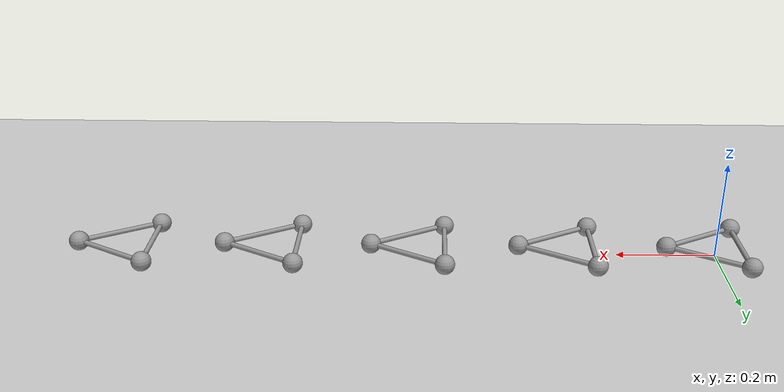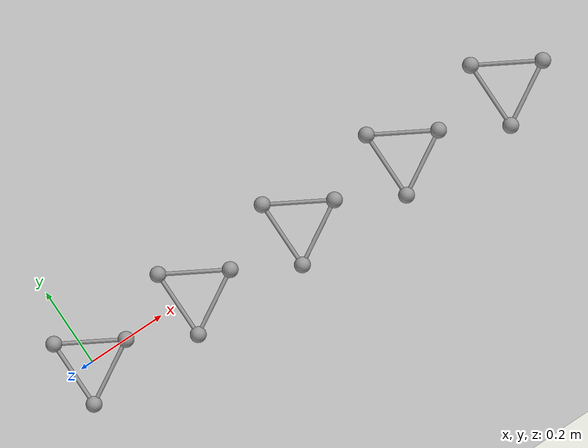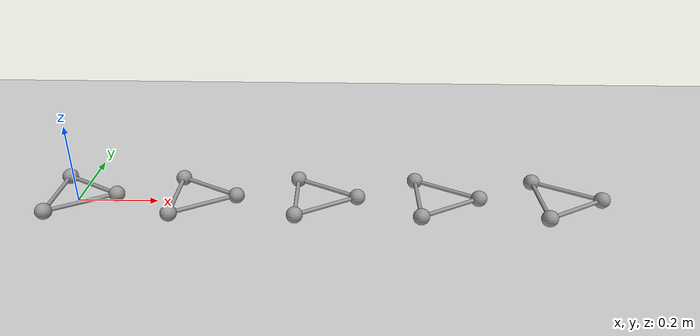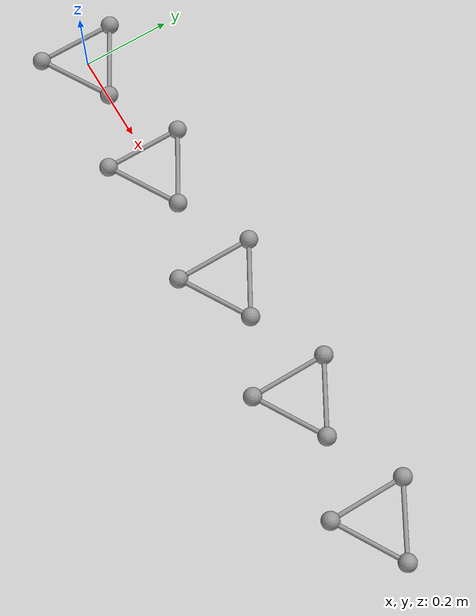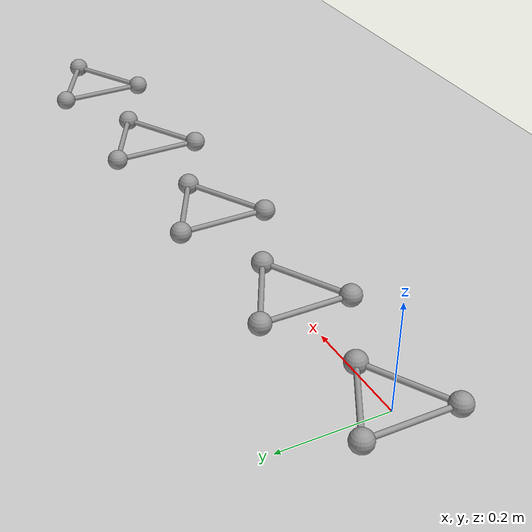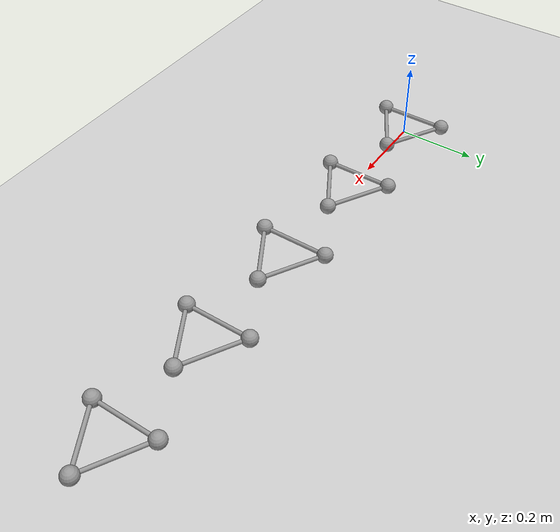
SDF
<sdf version="1.6">
 <world name="default">
  <include><uri>model://ground_plane</uri></include>
  <include><uri>model://sun</uri></include>
  <model name="triball_0">
   <link name="link">
    <pose>0 0 0.02 0 0 0</pose>
    <inertial>
     <mass>0.060318578948924034</mass>
     <inertia>
      <ixx>0.000311243867376448</ixx>
      <iyy>0.000311243867376448</iyy>
      <izz>0.0006128367621210681</izz>
      <ixy>0.0</ixy>
      <ixz>0.0</ixz>
      <iyz>0.0</iyz>
     </inertia>
    </inertial>
    <sensor name="imu" type="imu"><always_on>true</always_on></sensor>
    <collision name="collision_a">
     <pose>0.09999999999999999 0 0  0 0 0</pose>
     <geometry><sphere><radius>0.02</radius></sphere></geometry>
     <surface><friction><ode><mu>0.9</mu><mu2>0.9</mu2><fdir1>1 0 0</fdir1></ode></friction></surface>
    </collision>
    <visual name="visual_a">
     <pose>0.09999999999999999 0 0  0 0 0</pose>
     <geometry><sphere><radius>0.02</radius></sphere></geometry>
     <material>
      <script><uri>file://media/materials/scripts/gazebo.material</uri><name>Gazebo/Grey</name></script>
     </material>
    </visual>
    <collision name="collision_a_to_b">
     <pose>0.024999999999999998 0.04330127018922193 0.0  -1.5707962969925737 -1.0471975511965974 1.047197525387029</pose>
     <geometry><cylinder><radius>0.005</radius><length>0.17320508075688773</length></cylinder></geometry>
     <surface><friction><ode><mu>0.9</mu><mu2>0.9</mu2></ode></friction></surface>
    </collision>
    <visual name="visual_a_to_b">
     <pose>0.024999999999999998 0.04330127018922193 0.0  -1.5707962969925737 -1.0471975511965974 1.047197525387029</pose>
     <geometry><cylinder><radius>0.005</radius><length>0.17320508075688773</length></cylinder></geometry>
     <material>
      <script><uri>file://media/materials/scripts/gazebo.material</uri><name>Gazebo/Grey</name></script>
     </material>
    </visual>
    <collision name="collision_a_to_c">
     <pose>0.024999999999999998 -0.04330127018922193 0.0  1.5707962969925737 -1.0471975511965974 -1.047197525387029</pose>
     <geometry><cylinder><radius>0.005</radius><length>0.17320508075688773</length></cylinder></geometry>
     <surface><friction><ode><mu>0.9</mu><mu2>0.9</mu2></ode></friction></surface>
    </collision>
    <visual name="visual_a_to_c">
     <pose>0.024999999999999998 -0.04330127018922193 0.0  1.5707962969925737 -1.0471975511965974 -1.047197525387029</pose>
     <geometry><cylinder><radius>0.005</radius><length>0.17320508075688773</length></cylinder></geometry>
     <material>
      <script><uri>file://media/materials/scripts/gazebo.material</uri><name>Gazebo/Grey</name></script>
     </material>
    </visual>
    <collision name="collision_b">
     <pose>-0.049999999999999996 0.08660254037844387 0  0 0 0</pose>
     <geometry><sphere><radius>0.02</radius></sphere></geometry>
     <surface><friction><ode><mu>0.9</mu><mu2>0.9</mu2><fdir1>1 0 0</fdir1></ode></friction></surface>
    </collision>
    <visual name="visual_b">
     <pose>-0.049999999999999996 0.08660254037844387 0  0 0 0</pose>
     <geometry><sphere><radius>0.02</radius></sphere></geometry>
     <material>
      <script><uri>file://media/materials/scripts/gazebo.material</uri><name>Gazebo/Grey</name></script>
     </material>
    </visual>
    <collision name="collision_b_to_c">
     <pose>-0.049999999999999996 0.0 0.0  1.5707963267948963 -0.0 0.0</pose>
     <geometry><cylinder><radius>0.005</radius><length>0.17320508075688773</length></cylinder></geometry>
     <surface><friction><ode><mu>0.9</mu><mu2>0.9</mu2></ode></friction></surface>
    </collision>
    <visual name="visual_b_to_c">
     <pose>-0.049999999999999996 0.0 0.0  1.5707963267948963 -0.0 0.0</pose>
     <geometry><cylinder><radius>0.005</radius><length>0.17320508075688773</length></cylinder></geometry>
     <material>
      <script><uri>file://media/materials/scripts/gazebo.material</uri><name>Gazebo/Grey</name></script>
     </material>
    </visual>
    <collision name="collision_c">
     <pose>-0.049999999999999996 -0.08660254037844387 0  0 0 0</pose>
     <geometry><sphere><radius>0.02</radius></sphere></geometry>
     <surface><friction><ode><mu>0.9</mu><mu2>0.9</mu2><fdir1>1 0 0</fdir1></ode></friction></surface>
    </collision>
    <visual name="visual_c">
     <pose>-0.049999999999999996 -0.08660254037844387 0  0 0 0</pose>
     <geometry><sphere><radius>0.02</radius></sphere></geometry>
     <material>
      <script><uri>file://media/materials/scripts/gazebo.material</uri><name>Gazebo/Grey</name></script>
     </material>
    </visual>
   </link>
   <plugin name="triball_0" filename="libInitialVelocityPlugin.so">
    <linear>0 15 0</linear>
    <angular>0 0 -150.0</angular>
   </plugin>
  </model>
  <model name="triball_1">
   <pose>0.3 0 0 0 0 0</pose>
   <link name="link">
    <pose>0 0 0.02 0 0 0</pose>
    <inertial>
     <mass>0.060318578948924034</mass>
     <inertia>
      <ixx>0.000311243867376448</ixx>
      <iyy>0.000311243867376448</iyy>
      <izz>0.0006128367621210681</izz>
      <ixy>0.0</ixy>
      <ixz>0.0</ixz>
      <iyz>0.0</iyz>
     </inertia>
    </inertial>
    <sensor name="imu" type="imu"><always_on>true</always_on></sensor>
    <collision name="collision_a">
     <pose>0.09999999999999999 0 0  0 0 0</pose>
     <geometry><sphere><radius>0.02</radius></sphere></geometry>
     <surface><friction><ode><mu>0.9</mu><mu2>0.9</mu2><fdir1>1 0 0</fdir1></ode></friction></surface>
    </collision>
    <visual name="visual_a">
     <pose>0.09999999999999999 0 0  0 0 0</pose>
     <geometry><sphere><radius>0.02</radius></sphere></geometry>
     <material>
      <script><uri>file://media/materials/scripts/gazebo.material</uri><name>Gazebo/Grey</name></script>
     </material>
    </visual>
    <collision name="collision_a_to_b">
     <pose>0.024999999999999998 0.04330127018922193 0.0  -1.5707962969925737 -1.0471975511965974 1.047197525387029</pose>
     <geometry><cylinder><radius>0.005</radius><length>0.17320508075688773</length></cylinder></geometry>
     <surface><friction><ode><mu>0.9</mu><mu2>0.9</mu2></ode></friction></surface>
    </collision>
    <visual name="visual_a_to_b">
     <pose>0.024999999999999998 0.04330127018922193 0.0  -1.5707962969925737 -1.0471975511965974 1.047197525387029</pose>
     <geometry><cylinder><radius>0.005</radius><length>0.17320508075688773</length></cylinder></geometry>
     <material>
      <script><uri>file://media/materials/scripts/gazebo.material</uri><name>Gazebo/Grey</name></script>
     </material>
    </visual>
    <collision name="collision_a_to_c">
     <pose>0.024999999999999998 -0.04330127018922193 0.0  1.5707962969925737 -1.0471975511965974 -1.047197525387029</pose>
     <geometry><cylinder><radius>0.005</radius><length>0.17320508075688773</length></cylinder></geometry>
     <surface><friction><ode><mu>0.9</mu><mu2>0.9</mu2></ode></friction></surface>
    </collision>
    <visual name="visual_a_to_c">
     <pose>0.024999999999999998 -0.04330127018922193 0.0  1.5707962969925737 -1.0471975511965974 -1.047197525387029</pose>
     <geometry><cylinder><radius>0.005</radius><length>0.17320508075688773</length></cylinder></geometry>
     <material>
      <script><uri>file://media/materials/scripts/gazebo.material</uri><name>Gazebo/Grey</name></script>
     </material>
    </visual>
    <collision name="collision_b">
     <pose>-0.049999999999999996 0.08660254037844387 0  0 0 0</pose>
     <geometry><sphere><radius>0.02</radius></sphere></geometry>
     <surface><friction><ode><mu>0.9</mu><mu2>0.9</mu2><fdir1>1 0 0</fdir1></ode></friction></surface>
    </collision>
    <visual name="visual_b">
     <pose>-0.049999999999999996 0.08660254037844387 0  0 0 0</pose>
     <geometry><sphere><radius>0.02</radius></sphere></geometry>
     <material>
      <script><uri>file://media/materials/scripts/gazebo.material</uri><name>Gazebo/Grey</name></script>
     </material>
    </visual>
    <collision name="collision_b_to_c">
     <pose>-0.049999999999999996 0.0 0.0  1.5707963267948963 -0.0 0.0</pose>
     <geometry><cylinder><radius>0.005</radius><length>0.17320508075688773</length></cylinder></geometry>
     <surface><friction><ode><mu>0.9</mu><mu2>0.9</mu2></ode></friction></surface>
    </collision>
    <visual name="visual_b_to_c">
     <pose>-0.049999999999999996 0.0 0.0  1.5707963267948963 -0.0 0.0</pose>
     <geometry><cylinder><radius>0.005</radius><length>0.17320508075688773</length></cylinder></geometry>
     <material>
      <script><uri>file://media/materials/scripts/gazebo.material</uri><name>Gazebo/Grey</name></script>
     </material>
    </visual>
    <collision name="collision_c">
     <pose>-0.049999999999999996 -0.08660254037844387 0  0 0 0</pose>
     <geometry><sphere><radius>0.02</radius></sphere></geometry>
     <surface><friction><ode><mu>0.9</mu><mu2>0.9</mu2><fdir1>1 0 0</fdir1></ode></friction></surface>
    </collision>
    <visual name="visual_c">
     <pose>-0.049999999999999996 -0.08660254037844387 0  0 0 0</pose>
     <geometry><sphere><radius>0.02</radius></sphere></geometry>
     <material>
      <script><uri>file://media/materials/scripts/gazebo.material</uri><name>Gazebo/Grey</name></script>
     </material>
    </visual>
   </link>
   <plugin name="triball_1" filename="libInitialVelocityPlugin.so">
    <linear>0 15 0</linear>
    <angular>0 0 -140.625</angular>
   </plugin>
  </model>
  <model name="triball_2">
   <pose>0.6 0 0 0 0 0</pose>
   <link name="link">
    <pose>0 0 0.02 0 0 0</pose>
    <inertial>
     <mass>0.060318578948924034</mass>
     <inertia>
      <ixx>0.000311243867376448</ixx>
      <iyy>0.000311243867376448</iyy>
      <izz>0.0006128367621210681</izz>
      <ixy>0.0</ixy>
      <ixz>0.0</ixz>
      <iyz>0.0</iyz>
     </inertia>
    </inertial>
    <sensor name="imu" type="imu"><always_on>true</always_on></sensor>
    <collision name="collision_a">
     <pose>0.09999999999999999 0 0  0 0 0</pose>
     <geometry><sphere><radius>0.02</radius></sphere></geometry>
     <surface><friction><ode><mu>0.9</mu><mu2>0.9</mu2><fdir1>1 0 0</fdir1></ode></friction></surface>
    </collision>
    <visual name="visual_a">
     <pose>0.09999999999999999 0 0  0 0 0</pose>
     <geometry><sphere><radius>0.02</radius></sphere></geometry>
     <material>
      <script><uri>file://media/materials/scripts/gazebo.material</uri><name>Gazebo/Grey</name></script>
     </material>
    </visual>
    <collision name="collision_a_to_b">
     <pose>0.024999999999999998 0.04330127018922193 0.0  -1.5707962969925737 -1.0471975511965974 1.047197525387029</pose>
     <geometry><cylinder><radius>0.005</radius><length>0.17320508075688773</length></cylinder></geometry>
     <surface><friction><ode><mu>0.9</mu><mu2>0.9</mu2></ode></friction></surface>
    </collision>
    <visual name="visual_a_to_b">
     <pose>0.024999999999999998 0.04330127018922193 0.0  -1.5707962969925737 -1.0471975511965974 1.047197525387029</pose>
     <geometry><cylinder><radius>0.005</radius><length>0.17320508075688773</length></cylinder></geometry>
     <material>
      <script><uri>file://media/materials/scripts/gazebo.material</uri><name>Gazebo/Grey</name></script>
     </material>
    </visual>
    <collision name="collision_a_to_c">
     <pose>0.024999999999999998 -0.04330127018922193 0.0  1.5707962969925737 -1.0471975511965974 -1.047197525387029</pose>
     <geometry><cylinder><radius>0.005</radius><length>0.17320508075688773</length></cylinder></geometry>
     <surface><friction><ode><mu>0.9</mu><mu2>0.9</mu2></ode></friction></surface>
    </collision>
    <visual name="visual_a_to_c">
     <pose>0.024999999999999998 -0.04330127018922193 0.0  1.5707962969925737 -1.0471975511965974 -1.047197525387029</pose>
     <geometry><cylinder><radius>0.005</radius><length>0.17320508075688773</length></cylinder></geometry>
     <material>
      <script><uri>file://media/materials/scripts/gazebo.material</uri><name>Gazebo/Grey</name></script>
     </material>
    </visual>
    <collision name="collision_b">
     <pose>-0.049999999999999996 0.08660254037844387 0  0 0 0</pose>
     <geometry><sphere><radius>0.02</radius></sphere></geometry>
     <surface><friction><ode><mu>0.9</mu><mu2>0.9</mu2><fdir1>1 0 0</fdir1></ode></friction></surface>
    </collision>
    <visual name="visual_b">
     <pose>-0.049999999999999996 0.08660254037844387 0  0 0 0</pose>
     <geometry><sphere><radius>0.02</radius></sphere></geometry>
     <material>
      <script><uri>file://media/materials/scripts/gazebo.material</uri><name>Gazebo/Grey</name></script>
     </material>
    </visual>
    <collision name="collision_b_to_c">
     <pose>-0.049999999999999996 0.0 0.0  1.5707963267948963 -0.0 0.0</pose>
     <geometry><cylinder><radius>0.005</radius><length>0.17320508075688773</length></cylinder></geometry>
     <surface><friction><ode><mu>0.9</mu><mu2>0.9</mu2></ode></friction></surface>
    </collision>
    <visual name="visual_b_to_c">
     <pose>-0.049999999999999996 0.0 0.0  1.5707963267948963 -0.0 0.0</pose>
     <geometry><cylinder><radius>0.005</radius><length>0.17320508075688773</length></cylinder></geometry>
     <material>
      <script><uri>file://media/materials/scripts/gazebo.material</uri><name>Gazebo/Grey</name></script>
     </material>
    </visual>
    <collision name="collision_c">
     <pose>-0.049999999999999996 -0.08660254037844387 0  0 0 0</pose>
     <geometry><sphere><radius>0.02</radius></sphere></geometry>
     <surface><friction><ode><mu>0.9</mu><mu2>0.9</mu2><fdir1>1 0 0</fdir1></ode></friction></surface>
    </collision>
    <visual name="visual_c">
     <pose>-0.049999999999999996 -0.08660254037844387 0  0 0 0</pose>
     <geometry><sphere><radius>0.02</radius></sphere></geometry>
     <material>
      <script><uri>file://media/materials/scripts/gazebo.material</uri><name>Gazebo/Grey</name></script>
     </material>
    </visual>
   </link>
   <plugin name="triball_2" filename="libInitialVelocityPlugin.so">
    <linear>0 15 0</linear>
    <angular>0 0 -131.25</angular>
   </plugin>
  </model>
  <model name="triball_3">
   <pose>0.8999999999999999 0 0 0 0 0</pose>
   <link name="link">
    <pose>0 0 0.02 0 0 0</pose>
    <inertial>
     <mass>0.060318578948924034</mass>
     <inertia>
      <ixx>0.000311243867376448</ixx>
      <iyy>0.000311243867376448</iyy>
      <izz>0.0006128367621210681</izz>
      <ixy>0.0</ixy>
      <ixz>0.0</ixz>
      <iyz>0.0</iyz>
     </inertia>
    </inertial>
    <sensor name="imu" type="imu"><always_on>true</always_on></sensor>
    <collision name="collision_a">
     <pose>0.09999999999999999 0 0  0 0 0</pose>
     <geometry><sphere><radius>0.02</radius></sphere></geometry>
     <surface><friction><ode><mu>0.9</mu><mu2>0.9</mu2><fdir1>1 0 0</fdir1></ode></friction></surface>
    </collision>
    <visual name="visual_a">
     <pose>0.09999999999999999 0 0  0 0 0</pose>
     <geometry><sphere><radius>0.02</radius></sphere></geometry>
     <material>
      <script><uri>file://media/materials/scripts/gazebo.material</uri><name>Gazebo/Grey</name></script>
     </material>
    </visual>
    <collision name="collision_a_to_b">
     <pose>0.024999999999999998 0.04330127018922193 0.0  -1.5707962969925737 -1.0471975511965974 1.047197525387029</pose>
     <geometry><cylinder><radius>0.005</radius><length>0.17320508075688773</length></cylinder></geometry>
     <surface><friction><ode><mu>0.9</mu><mu2>0.9</mu2></ode></friction></surface>
    </collision>
    <visual name="visual_a_to_b">
     <pose>0.024999999999999998 0.04330127018922193 0.0  -1.5707962969925737 -1.0471975511965974 1.047197525387029</pose>
     <geometry><cylinder><radius>0.005</radius><length>0.17320508075688773</length></cylinder></geometry>
     <material>
      <script><uri>file://media/materials/scripts/gazebo.material</uri><name>Gazebo/Grey</name></script>
     </material>
    </visual>
    <collision name="collision_a_to_c">
     <pose>0.024999999999999998 -0.04330127018922193 0.0  1.5707962969925737 -1.0471975511965974 -1.047197525387029</pose>
     <geometry><cylinder><radius>0.005</radius><length>0.17320508075688773</length></cylinder></geometry>
     <surface><friction><ode><mu>0.9</mu><mu2>0.9</mu2></ode></friction></surface>
    </collision>
    <visual name="visual_a_to_c">
     <pose>0.024999999999999998 -0.04330127018922193 0.0  1.5707962969925737 -1.0471975511965974 -1.047197525387029</pose>
     <geometry><cylinder><radius>0.005</radius><length>0.17320508075688773</length></cylinder></geometry>
     <material>
      <script><uri>file://media/materials/scripts/gazebo.material</uri><name>Gazebo/Grey</name></script>
     </material>
    </visual>
    <collision name="collision_b">
     <pose>-0.049999999999999996 0.08660254037844387 0  0 0 0</pose>
     <geometry><sphere><radius>0.02</radius></sphere></geometry>
     <surface><friction><ode><mu>0.9</mu><mu2>0.9</mu2><fdir1>1 0 0</fdir1></ode></friction></surface>
    </collision>
    <visual name="visual_b">
     <pose>-0.049999999999999996 0.08660254037844387 0  0 0 0</pose>
     <geometry><sphere><radius>0.02</radius></sphere></geometry>
     <material>
      <script><uri>file://media/materials/scripts/gazebo.material</uri><name>Gazebo/Grey</name></script>
     </material>
    </visual>
    <collision name="collision_b_to_c">
     <pose>-0.049999999999999996 0.0 0.0  1.5707963267948963 -0.0 0.0</pose>
     <geometry><cylinder><radius>0.005</radius><length>0.17320508075688773</length></cylinder></geometry>
     <surface><friction><ode><mu>0.9</mu><mu2>0.9</mu2></ode></friction></surface>
    </collision>
    <visual name="visual_b_to_c">
     <pose>-0.049999999999999996 0.0 0.0  1.5707963267948963 -0.0 0.0</pose>
     <geometry><cylinder><radius>0.005</radius><length>0.17320508075688773</length></cylinder></geometry>
     <material>
      <script><uri>file://media/materials/scripts/gazebo.material</uri><name>Gazebo/Grey</name></script>
     </material>
    </visual>
    <collision name="collision_c">
     <pose>-0.049999999999999996 -0.08660254037844387 0  0 0 0</pose>
     <geometry><sphere><radius>0.02</radius></sphere></geometry>
     <surface><friction><ode><mu>0.9</mu><mu2>0.9</mu2><fdir1>1 0 0</fdir1></ode></friction></surface>
    </collision>
    <visual name="visual_c">
     <pose>-0.049999999999999996 -0.08660254037844387 0  0 0 0</pose>
     <geometry><sphere><radius>0.02</radius></sphere></geometry>
     <material>
      <script><uri>file://media/materials/scripts/gazebo.material</uri><name>Gazebo/Grey</name></script>
     </material>
    </visual>
   </link>
   <plugin name="triball_3" filename="libInitialVelocityPlugin.so">
    <linear>0 15 0</linear>
    <angular>0 0 -121.875</angular>
   </plugin>
  </model>
  <model name="triball_4">
   <pose>1.2 0 0 0 0 0</pose>
   <link name="link">
    <pose>0 0 0.02 0 0 0</pose>
    <inertial>
     <mass>0.060318578948924034</mass>
     <inertia>
      <ixx>0.000311243867376448</ixx>
      <iyy>0.000311243867376448</iyy>
      <izz>0.0006128367621210681</izz>
      <ixy>0.0</ixy>
      <ixz>0.0</ixz>
      <iyz>0.0</iyz>
     </inertia>
    </inertial>
    <sensor name="imu" type="imu"><always_on>true</always_on></sensor>
    <collision name="collision_a">
     <pose>0.09999999999999999 0 0  0 0 0</pose>
     <geometry><sphere><radius>0.02</radius></sphere></geometry>
     <surface><friction><ode><mu>0.9</mu><mu2>0.9</mu2><fdir1>1 0 0</fdir1></ode></friction></surface>
    </collision>
    <visual name="visual_a">
     <pose>0.09999999999999999 0 0  0 0 0</pose>
     <geometry><sphere><radius>0.02</radius></sphere></geometry>
     <material>
      <script><uri>file://media/materials/scripts/gazebo.material</uri><name>Gazebo/Grey</name></script>
     </material>
    </visual>
    <collision name="collision_a_to_b">
     <pose>0.024999999999999998 0.04330127018922193 0.0  -1.5707962969925737 -1.0471975511965974 1.047197525387029</pose>
     <geometry><cylinder><radius>0.005</radius><length>0.17320508075688773</length></cylinder></geometry>
     <surface><friction><ode><mu>0.9</mu><mu2>0.9</mu2></ode></friction></surface>
    </collision>
    <visual name="visual_a_to_b">
     <pose>0.024999999999999998 0.04330127018922193 0.0  -1.5707962969925737 -1.0471975511965974 1.047197525387029</pose>
     <geometry><cylinder><radius>0.005</radius><length>0.17320508075688773</length></cylinder></geometry>
     <material>
      <script><uri>file://media/materials/scripts/gazebo.material</uri><name>Gazebo/Grey</name></script>
     </material>
    </visual>
    <collision name="collision_a_to_c">
     <pose>0.024999999999999998 -0.04330127018922193 0.0  1.5707962969925737 -1.0471975511965974 -1.047197525387029</pose>
     <geometry><cylinder><radius>0.005</radius><length>0.17320508075688773</length></cylinder></geometry>
     <surface><friction><ode><mu>0.9</mu><mu2>0.9</mu2></ode></friction></surface>
    </collision>
    <visual name="visual_a_to_c">
     <pose>0.024999999999999998 -0.04330127018922193 0.0  1.5707962969925737 -1.0471975511965974 -1.047197525387029</pose>
     <geometry><cylinder><radius>0.005</radius><length>0.17320508075688773</length></cylinder></geometry>
     <material>
      <script><uri>file://media/materials/scripts/gazebo.material</uri><name>Gazebo/Grey</name></script>
     </material>
    </visual>
    <collision name="collision_b">
     <pose>-0.049999999999999996 0.08660254037844387 0  0 0 0</pose>
     <geometry><sphere><radius>0.02</radius></sphere></geometry>
     <surface><friction><ode><mu>0.9</mu><mu2>0.9</mu2><fdir1>1 0 0</fdir1></ode></friction></surface>
    </collision>
    <visual name="visual_b">
     <pose>-0.049999999999999996 0.08660254037844387 0  0 0 0</pose>
     <geometry><sphere><radius>0.02</radius></sphere></geometry>
     <material>
      <script><uri>file://media/materials/scripts/gazebo.material</uri><name>Gazebo/Grey</name></script>
     </material>
    </visual>
    <collision name="collision_b_to_c">
     <pose>-0.049999999999999996 0.0 0.0  1.5707963267948963 -0.0 0.0</pose>
     <geometry><cylinder><radius>0.005</radius><length>0.17320508075688773</length></cylinder></geometry>
     <surface><friction><ode><mu>0.9</mu><mu2>0.9</mu2></ode></friction></surface>
    </collision>
    <visual name="visual_b_to_c">
     <pose>-0.049999999999999996 0.0 0.0  1.5707963267948963 -0.0 0.0</pose>
     <geometry><cylinder><radius>0.005</radius><length>0.17320508075688773</length></cylinder></geometry>
     <material>
      <script><uri>file://media/materials/scripts/gazebo.material</uri><name>Gazebo/Grey</name></script>
     </material>
    </visual>
    <collision name="collision_c">
     <pose>-0.049999999999999996 -0.08660254037844387 0  0 0 0</pose>
     <geometry><sphere><radius>0.02</radius></sphere></geometry>
     <surface><friction><ode><mu>0.9</mu><mu2>0.9</mu2><fdir1>1 0 0</fdir1></ode></friction></surface>
    </collision>
    <visual name="visual_c">
     <pose>-0.049999999999999996 -0.08660254037844387 0  0 0 0</pose>
     <geometry><sphere><radius>0.02</radius></sphere></geometry>
     <material>
      <script><uri>file://media/materials/scripts/gazebo.material</uri><name>Gazebo/Grey</name></script>
     </material>
    </visual>
   </link>
   <plugin name="triball_4" filename="libInitialVelocityPlugin.so">
    <linear>0 15 0</linear>
    <angular>0 0 -112.5</angular>
   </plugin>
  </model>
 </world>
</sdf>
